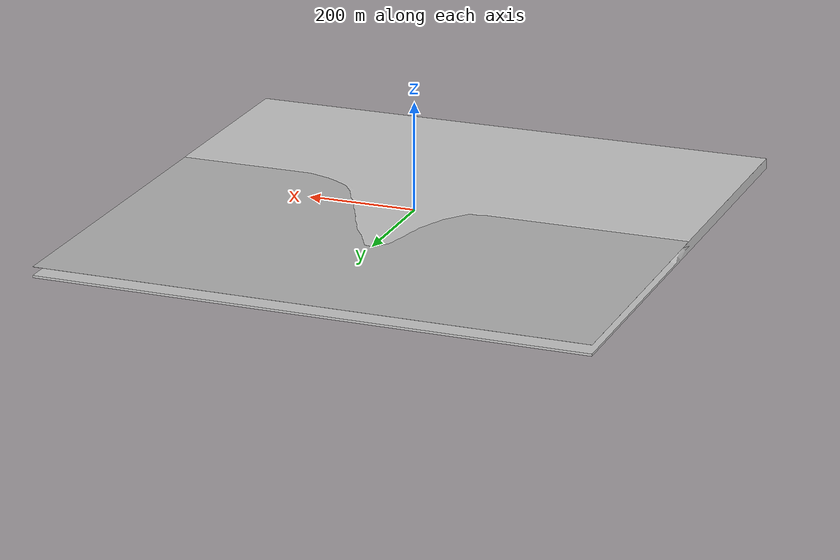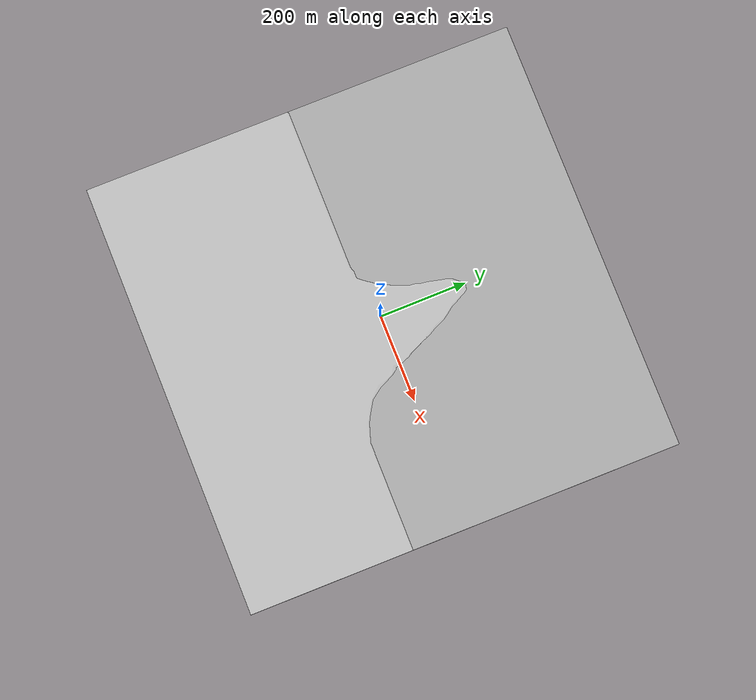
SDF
<?xml version="1.0" ?>
<sdf version="1.5">
  <model name="model">
      <pose>0 0 0  0 0 0</pose>
      <static>true</static>
      <link name="body">
        <collision name="seabed">
          <pose>0 0 -5.5 0 0 0</pose>
          <geometry>
            <mesh><uri>model://smooth/meshes/av4vai_world_scaled.dae</uri></mesh>
          </geometry>
          <material>
            <script>
              <uri>model://smooth/materials/scripts/sand.material</uri>
              <name>UUVSimulator/SandAndStones</name>
            </script>
          </material>
        </collision>

        <visual name="seabed">
          <pose>0 0 -5.5 0 0 0</pose>
          <geometry>
            <mesh><uri>model://smooth/meshes/av4vai_world_scaled.dae</uri></mesh>
          </geometry>
          <material>
            <script>
              <uri>model://smooth/materials/scripts/sand.material</uri>
              <name>UUVSimulator/SandAndStones</name>
            </script>
          </material>
        </visual>
        <visual name="surface">
          <pose>0 0 0 0 0 0</pose>
          <geometry>
            <box>
              <size>1000 1000 .1</size>
            </box>
          </geometry>
          <material>
            <script>
              <uri>model://smooth/materials/scripts/water.material</uri>
              <name>UUVSimulator/StaticWater</name>
            </script>
          </material>
        </visual>
      </link>
    </model>
</sdf>
